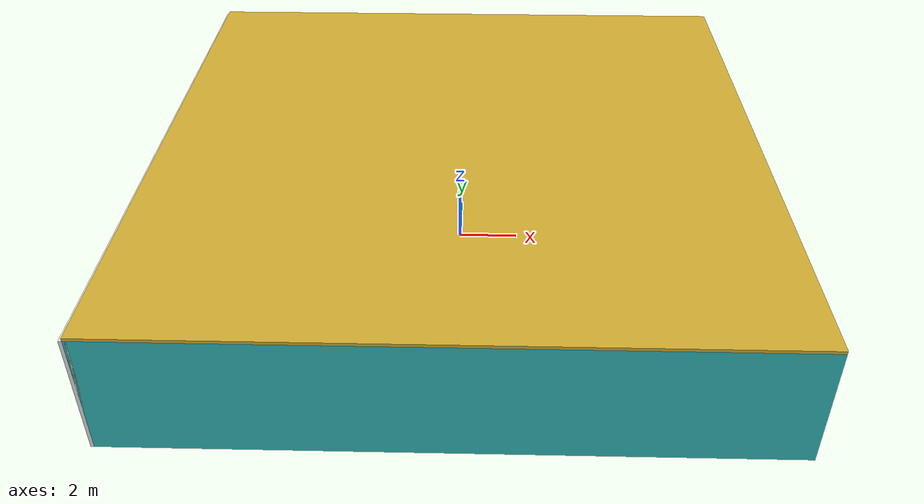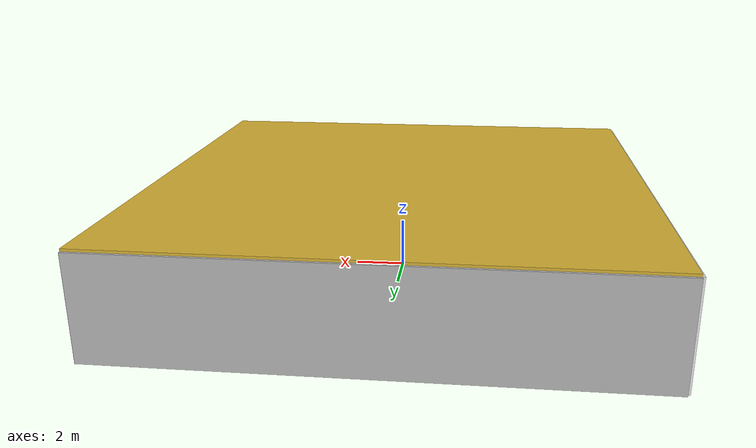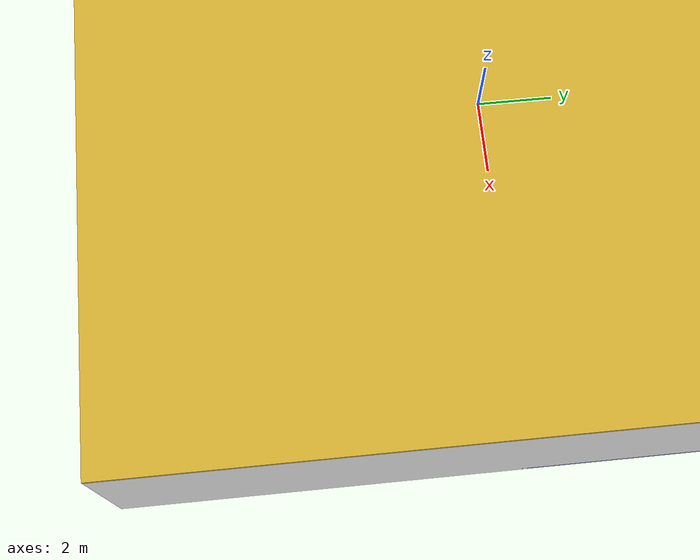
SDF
<sdf version="1.4">
 <world name="default">
  <physics type="ode">
   <max_step_size>0.001</max_step_size>
   <real_time_factor>1</real_time_factor>
   <real_time_update_rate>1000</real_time_update_rate>
   <gravity>0 0 -9.8</gravity>
  </physics>
  <scene><ambient>0.4 0.4 0.4 1</ambient><background>0.7 0.7 0.7 1</background><shadows>1</shadows></scene>
  <model name="Surrounding">
   <static>1</static>
   <link name="Ceiling">
    <collision name="Ceiling_Collision"><geometry><box><size>20 20 0.1</size></box></geometry></collision>
    <visual name="Ceiling_Visual">
     <geometry><box><size>20 20 0.1</size></box></geometry>
     <material>
      <script><uri>file://media/materials/scripts/gazebo.material</uri><name>Gazebo/Gold</name></script>
     </material>
    </visual>
    <pose>0 0 4.05 0 0 0</pose>
   </link>
   <link name="Wall_South">
    <collision name="Wall_South_Collision">
     <geometry><box><size>20 0 4</size></box></geometry>
     <pose>0 0 2 0 -0 0</pose>
    </collision>
    <visual name="Wall_South_Visual">
     <pose>0 0 2 0 -0 0</pose>
     <geometry><box><size>20 0 4</size></box></geometry>
     <material>
      <script>
       <uri>file://media/materials/scripts/gazebo.material</uri>
       <name>Gazebo/TurquoiseGlowOutline</name>
      </script>
     </material>
    </visual>
    <velocity_decay><linear>0</linear><angular>0</angular></velocity_decay>
    <pose>0 -10 0 0 -0 0</pose>
   </link>
   <link name="Wall_East">
    <collision name="Wall_21_Collision">
     <geometry><box><size>20 0 4</size></box></geometry>
     <pose>0 0 2 0 -0 0</pose>
    </collision>
    <visual name="Wall_21_Visual">
     <pose>0 0 2 0 -0 0</pose>
     <geometry><box><size>20 0 4</size></box></geometry>
     <material>
      <script><uri>file://media/materials/scripts/gazebo.material</uri><name>Gazebo/WhiteGlow</name></script>
     </material>
    </visual>
    <velocity_decay><linear>0</linear><angular>0</angular></velocity_decay>
    <pose>10 0 0 0 -0 1.5708</pose>
   </link>
   <link name="Wall_North">
    <collision name="Wall_22_Collision">
     <geometry><box><size>20 0.2 4</size></box></geometry>
     <pose>0 0 2 0 -0 0</pose>
    </collision>
    <visual name="Wall_22_Visual">
     <pose>0 0 2 0 -0 0</pose>
     <geometry><box><size>20 0.2 4</size></box></geometry>
     <material>
      <script><uri>file://media/materials/scripts/gazebo.material</uri><name>Gazebo/JointAnchor</name></script>
     </material>
    </visual>
    <velocity_decay><linear>0</linear><angular>0</angular></velocity_decay>
    <pose>0 10 0 0 -0 0</pose>
   </link>
   <link name="Wall_West">
    <collision name="Wall_23_Collision">
     <geometry><box><size>20 0.2 4</size></box></geometry>
     <pose>0 0 2 0 -0 0</pose>
    </collision>
    <visual name="Wall_23_Visual">
     <pose>0 0 2 0 -0 0</pose>
     <geometry><box><size>20 0.2 4</size></box></geometry>
     <material>
      <script><uri>file://media/materials/scripts/gazebo.material</uri><name>Gazebo/White</name></script>
     </material>
    </visual>
    <velocity_decay><linear>0</linear><angular>0</angular></velocity_decay>
    <pose>-10 0 0 0 0 -1.5708</pose>
   </link>
   <link name="Ground_link">
    <collision name="collision">
     <pose>0 0 .05 0 -0 0</pose>
     <geometry><box><size>20 20 0.1</size></box></geometry>
    </collision>
    <visual name="visual">
     <pose>0 0 .05 0 -0 0</pose>
     <geometry><box><size>20 20 0.1</size></box></geometry>
     <material>
      <script><uri>file://media/materials/scripts/gazebo.material</uri><name>Gazebo/BlueTransparent</name></script>
     </material>
    </visual>
   </link>
   <static>1</static>
  </model>
  <spherical_coordinates>
   <surface_model>EARTH_WGS84</surface_model>
   <latitude_deg>0</latitude_deg>
   <longitude_deg>0</longitude_deg>
   <elevation>0</elevation>
   <heading_deg>0</heading_deg>
  </spherical_coordinates>
  <light name="lightball_0" type="diffuse">
   <diffuse>0.8 0.8 0.8 1</diffuse>
   <specular>0.2 0.2 0.2 1</specular>
   <attenuation>
    <range>100</range>
    <constant>0.7</constant>
    <linear>0.01</linear>
    <quadratic>0.001</quadratic>
   </attenuation>
   <direction>-0.5 0.1 -0.9</direction>
   <pose>5.84881844114 -0.499142235202 1.2328836403 0 0 0</pose>
  </light>
  <light name="lightball_1" type="diffuse">
   <diffuse>0.8 0.8 0.8 1</diffuse>
   <specular>0.2 0.2 0.2 1</specular>
   <attenuation>
    <range>100</range>
    <constant>0.7</constant>
    <linear>0.01</linear>
    <quadratic>0.001</quadratic>
   </attenuation>
   <direction>-0.5 0.1 -0.9</direction>
   <pose>-3.33733546122 4.28645307113 1.83221969748 0 0 0</pose>
  </light>
  <light name="lightball_2" type="diffuse">
   <diffuse>0.8 0.8 0.8 1</diffuse>
   <specular>0.2 0.2 0.2 1</specular>
   <attenuation>
    <range>100</range>
    <constant>0.7</constant>
    <linear>0.01</linear>
    <quadratic>0.001</quadratic>
   </attenuation>
   <direction>-0.5 0.1 -0.9</direction>
   <pose>8.29968492517 7.84644492949 1.13549931288 0 0 0</pose>
  </light>
  <light name="lightball_3" type="diffuse">
   <diffuse>0.8 0.8 0.8 1</diffuse>
   <specular>0.2 0.2 0.2 1</specular>
   <attenuation>
    <range>100</range>
    <constant>0.7</constant>
    <linear>0.01</linear>
    <quadratic>0.001</quadratic>
   </attenuation>
   <direction>-0.5 0.1 -0.9</direction>
   <pose>6.49224229637 -2.30477385821 2.9014824271 0 0 0</pose>
  </light>
  <include><uri>model://cabinet</uri><pose>-3.80704461091 6.64130647431 0 0 0 0.137701897736</pose></include>
  <include>
   <uri>model://construction_cone</uri>
   <pose>-0.829687344325 -0.413334164652 0 0 0 1.44066120085</pose>
  </include>
  <include>
   <uri>model://textured_shapes</uri>
   <pose>0.620328504578 -6.42851563114 0 0 0 1.21467065616</pose>
  </include>
  <include><uri>model://cabinet</uri><pose>1.08323435081 -0.541944765628 0 0 0 2.90094472892</pose></include>
  <include><uri>model://cabinet</uri><pose>0.93065025517 0.760500276822 0 0 0 2.27421146373</pose></include>
  <include>
   <uri>model://textured_shapes</uri>
   <pose>7.00767178872 -4.1088672298 0 0 0 1.12872009649</pose>
  </include>
 </world>
</sdf>

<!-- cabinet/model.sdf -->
<sdf version="1.5">
  <model name="cabinet">
    <static>true</static>
    <link name="cabinet_bottom_plate">
      <inertial>
        <pose>0 0 -1 0 0 0</pose>
        <inertia>
          <ixx>2.050000</ixx>
          <ixy>0</ixy>
          <ixz>0</ixz>
          <iyy>2.050000</iyy>
          <iyz>0</iyz>
          <izz>2.050000</izz>
        </inertia>
        <mass>25.000000</mass>
      </inertial>
      <collision name="cabinet_bottom_plate_geom">
        <pose>0 0 0.010000 0 0 0</pose>
        <geometry>
          <box>
            <size>0.450000 0.450000 0.020000</size>
          </box>
        </geometry>
      </collision>
      <visual name="cabinet_bottom_plate_geom_visual">
        <pose>0 0 0.010000 0 0 0</pose>
        <geometry>
          <box>
            <size>0.450000 0.450000 0.020000</size>
          </box>
        </geometry>
        <material>
          <script>
            <uri>model://media/materials/scripts/gazebo.material</uri>
            <name>Gazebo/Wood</name>
          </script>
        </material>
      </visual>
      <collision name="cabinet_bottom_plate_geom_cabinet_back_plate">
        <pose>0.235000 0 0.510000 0 0 0</pose>
        <geometry>
          <box>
            <size>0.020000 0.450000 1.020000</size>
          </box>
        </geometry>
      </collision>
      <visual name="cabinet_bottom_plate_geom_cabinet_back_plate_visual">
        <pose>0.235000 0 0.510000 0 0 0</pose>
        <geometry>
          <box>
            <size>0.020000 0.450000 1.020000</size>
          </box>
        </geometry>
        <material>
          <script>
            <uri>model://media/materials/scripts/gazebo.material</uri>
            <name>Gazebo/Wood</name>
          </script>
        </material>
      </visual>
      <collision name="cabinet_bottom_plate_geom_cabinet_left_plate">
        <pose>0 0.235000 0.510000 0 0 0</pose>
        <geometry>
          <box>
            <size>0.450000 0.020000 1.020000</size>
          </box>
        </geometry>
      </collision>
      <visual name="cabinet_bottom_plate_geom_cabinet_left_plate_visual">
        <pose>0 0.235000 0.510000 0 0 0</pose>
        <geometry>
          <box>
            <size>0.450000 0.020000 1.020000</size>
          </box>
        </geometry>
        <material>
          <script>
            <uri>model://media/materials/scripts/gazebo.material</uri>
            <name>Gazebo/Wood</name>
          </script>
        </material>
      </visual>
      <collision name="cabinet_bottom_plate_geom_cabinet_middle_plate">
        <pose>0 0 0.510000 0 0 0</pose>
        <geometry>
          <box>
            <size>0.450000 0.450000 0.020000</size>
          </box>
        </geometry>
      </collision>
      <visual name="cabinet_bottom_plate_geom_cabinet_middle_plate_visual">
        <pose>0 0 0.510000 0 0 0</pose>
        <geometry>
          <box>
            <size>0.450000 0.450000 0.020000</size>
          </box>
        </geometry>
        <material>
          <script>
            <uri>model://media/materials/scripts/gazebo.material</uri>
            <name>Gazebo/Wood</name>
          </script>
        </material>
      </visual>
      <collision name="cabinet_bottom_plate_geom_cabinet_right_plate">
        <pose>0 -0.235000 0.510000 0 0 0</pose>
        <geometry>
          <box>
            <size>0.450000 0.020000 1.020000</size>
          </box>
        </geometry>
      </collision>
      <visual name="cabinet_bottom_plate_geom_cabinet_right_plate_visual">
        <pose>0 -0.235000 0.510000 0 0 0</pose>
        <geometry>
          <box>
            <size>0.450000 0.020000 1.020000</size>
          </box>
        </geometry>
        <material>
          <script>
            <uri>model://media/materials/scripts/gazebo.material</uri>
            <name>Gazebo/Wood</name>
          </script>
        </material>
      </visual>
      <collision name="cabinet_bottom_plate_geom_cabinet_top_plate">
        <pose>0 0 1.010000 0 0 0</pose>
        <geometry>
          <box>
            <size>0.450000 0.450000 0.020000</size>
          </box>
        </geometry>
      </collision>
      <visual name="cabinet_bottom_plate_geom_cabinet_top_plate_visual">
        <pose>0 0 1.010000 0 0 0</pose>
        <geometry>
          <box>
            <size>0.450000 0.450000 0.020000</size>
          </box>
        </geometry>
        <material>
          <script>
            <uri>model://media/materials/scripts/gazebo.material</uri>
            <name>Gazebo/Wood</name>
          </script>
        </material>
      </visual>
    </link>
  </model>
</sdf>

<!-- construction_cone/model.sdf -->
<sdf version="1.5">
  <model name="Construction Cone">
    <link name="link">
      <collision name="collision">
        <geometry>
          <mesh>
            <scale>10 10 10</scale>
            <uri>file://isr-testbed/construction_cone/meshes/construction_cone.dae</uri>
          </mesh>
        </geometry>
      </collision>
      <visual name="visual">
        <geometry>
          <mesh>
            <scale>10 10 10</scale>
            <uri>file://isr-testbed/construction_cone/meshes/construction_cone.dae</uri>
          </mesh>
        </geometry>
      </visual>
    </link>
  </model>
</sdf>

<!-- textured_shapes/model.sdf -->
<sdf version="1.6">
  <model name="textured_shapes">
    <pose>0 0 0.5 0 0 0</pose>
    <link name="box">
      <pose>0 -1.5 0 0 0 0</pose>
      <collision name="collision">
        <geometry>
          <box>
            <size>1 1 1</size>
          </box>
        </geometry>
      </collision>
      <visual name="visual">
        <geometry>
          <box>
            <size>1 1 1</size>
          </box>
        </geometry>
        <material>
          <script>
            <uri>model://../model_source/models/textured_shapes/materials/scripts</uri>
            <uri>model://../model_source/models/textured_shapes/materials/textures</uri>
            <name>TexturedShape/Squares</name>
          </script>
        </material>
      </visual>
    </link>
    <link name="sphere">
      <collision name="collision">
        <geometry>
          <sphere>
            <radius>0.5</radius>
          </sphere>
        </geometry>
      </collision>
      <visual name="visual">
        <geometry>
          <sphere>
            <radius>0.5</radius>
          </sphere>
        </geometry>
        <material>
          <script>
            <uri>model://../model_source/models/textured_shapes/materials/scripts</uri>
            <uri>model://../model_source/models/textured_shapes/materials/textures</uri>
            <name>TexturedShape/Squares</name>
          </script>
        </material>
      </visual>
    </link>
    <link name="cylinder">
      <pose>0 1.5 0 0 0 0</pose>
      <collision name="collision">
        <geometry>
          <cylinder>
            <radius>0.5</radius>
            <length>1</length>
          </cylinder>
        </geometry>
      </collision>
      <visual name="visual">
        <geometry>
          <cylinder>
            <radius>0.5</radius>
            <length>1</length>
          </cylinder>
        </geometry>
        <material>
          <script>
            <uri>model://../model_source/models/textured_shapes/materials/scripts</uri>
            <uri>model://../model_source/models/textured_shapes/materials/textures</uri>
            <name>TexturedShape/Squares</name>
          </script>
        </material>
      </visual>
    </link>
  </model>
</sdf>
